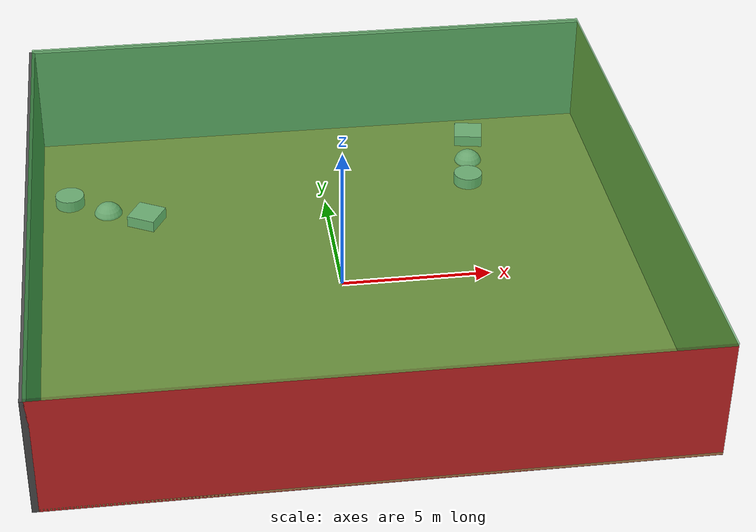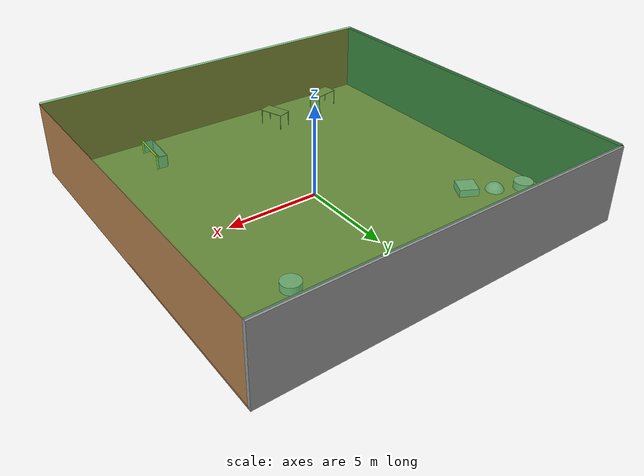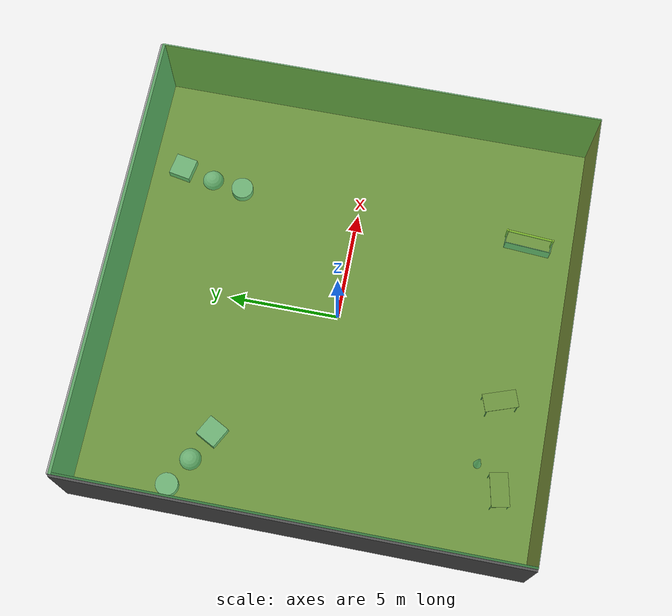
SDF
<sdf version="1.4">
 <world name="default">
  <physics type="ode">
   <max_step_size>0.001</max_step_size>
   <real_time_factor>1</real_time_factor>
   <real_time_update_rate>1000</real_time_update_rate>
   <gravity>0 0 -9.8</gravity>
  </physics>
  <scene><ambient>0.4 0.4 0.4 1</ambient><background>0.7 0.7 0.7 1</background><shadows>1</shadows></scene>
  <model name="Surrounding">
   <static>1</static>
   <link name="Ceiling">
    <collision name="Ceiling_Collision"><geometry><box><size>20 20 0.1</size></box></geometry></collision>
    <visual name="Ceiling_Visual">
     <geometry><box><size>20 20 0.1</size></box></geometry>
     <material>
      <script><uri>file://media/materials/scripts/gazebo.material</uri><name>Gazebo/GreenTransparent</name></script>
     </material>
    </visual>
    <pose>0 0 4.05 0 0 0</pose>
   </link>
   <link name="Wall_South">
    <collision name="Wall_South_Collision">
     <geometry><box><size>20 0 4</size></box></geometry>
     <pose>0 0 2 0 -0 0</pose>
    </collision>
    <visual name="Wall_South_Visual">
     <pose>0 0 2 0 -0 0</pose>
     <geometry><box><size>20 0 4</size></box></geometry>
     <material>
      <script><uri>file://media/materials/scripts/gazebo.material</uri><name>Gazebo/Red</name></script>
     </material>
    </visual>
    <velocity_decay><linear>0</linear><angular>0</angular></velocity_decay>
    <pose>0 -10 0 0 -0 0</pose>
   </link>
   <link name="Wall_East">
    <collision name="Wall_21_Collision">
     <geometry><box><size>20 0 4</size></box></geometry>
     <pose>0 0 2 0 -0 0</pose>
    </collision>
    <visual name="Wall_21_Visual">
     <pose>0 0 2 0 -0 0</pose>
     <geometry><box><size>20 0 4</size></box></geometry>
     <material>
      <script><uri>file://media/materials/scripts/gazebo.material</uri><name>Gazebo/WoodFloor</name></script>
     </material>
    </visual>
    <velocity_decay><linear>0</linear><angular>0</angular></velocity_decay>
    <pose>10 0 0 0 -0 1.5708</pose>
   </link>
   <link name="Wall_North">
    <collision name="Wall_22_Collision">
     <geometry><box><size>20 0.2 4</size></box></geometry>
     <pose>0 0 2 0 -0 0</pose>
    </collision>
    <visual name="Wall_22_Visual">
     <pose>0 0 2 0 -0 0</pose>
     <geometry><box><size>20 0.2 4</size></box></geometry>
     <material>
      <script><uri>file://media/materials/scripts/gazebo.material</uri><name>Gazebo/GreyGradientSky</name></script>
     </material>
    </visual>
    <velocity_decay><linear>0</linear><angular>0</angular></velocity_decay>
    <pose>0 10 0 0 -0 0</pose>
   </link>
   <link name="Wall_West">
    <collision name="Wall_23_Collision">
     <geometry><box><size>20 0.2 4</size></box></geometry>
     <pose>0 0 2 0 -0 0</pose>
    </collision>
    <visual name="Wall_23_Visual">
     <pose>0 0 2 0 -0 0</pose>
     <geometry><box><size>20 0.2 4</size></box></geometry>
     <material>
      <script><uri>file://media/materials/scripts/gazebo.material</uri><name>Gazebo/DarkGrey</name></script>
     </material>
    </visual>
    <velocity_decay><linear>0</linear><angular>0</angular></velocity_decay>
    <pose>-10 0 0 0 0 -1.5708</pose>
   </link>
   <link name="Ground_link">
    <collision name="collision">
     <pose>0 0 .05 0 -0 0</pose>
     <geometry><box><size>20 20 0.1</size></box></geometry>
    </collision>
    <visual name="visual">
     <pose>0 0 .05 0 -0 0</pose>
     <geometry><box><size>20 20 0.1</size></box></geometry>
     <material>
      <script><uri>file://media/materials/scripts/gazebo.material</uri><name>Gazebo/WoodPallet</name></script>
     </material>
    </visual>
   </link>
   <static>1</static>
  </model>
  <spherical_coordinates>
   <surface_model>EARTH_WGS84</surface_model>
   <latitude_deg>0</latitude_deg>
   <longitude_deg>0</longitude_deg>
   <elevation>0</elevation>
   <heading_deg>0</heading_deg>
  </spherical_coordinates>
  <light name="lightball_0" type="diffuse">
   <diffuse>0.8 0.8 0.8 1</diffuse>
   <specular>0.2 0.2 0.2 1</specular>
   <attenuation>
    <range>100</range>
    <constant>0.7</constant>
    <linear>0.01</linear>
    <quadratic>0.001</quadratic>
   </attenuation>
   <direction>-0.5 0.1 -0.9</direction>
   <pose>-0.602299098177 -5.03157525721 3.7909501908 0 0 0</pose>
  </light>
  <light name="lightball_1" type="diffuse">
   <diffuse>0.8 0.8 0.8 1</diffuse>
   <specular>0.2 0.2 0.2 1</specular>
   <attenuation>
    <range>100</range>
    <constant>0.7</constant>
    <linear>0.01</linear>
    <quadratic>0.001</quadratic>
   </attenuation>
   <direction>-0.5 0.1 -0.9</direction>
   <pose>8.1970063411 4.37877296668 3.8220330077 0 0 0</pose>
  </light>
  <light name="lightball_2" type="diffuse">
   <diffuse>0.8 0.8 0.8 1</diffuse>
   <specular>0.2 0.2 0.2 1</specular>
   <attenuation>
    <range>100</range>
    <constant>0.7</constant>
    <linear>0.01</linear>
    <quadratic>0.001</quadratic>
   </attenuation>
   <direction>-0.5 0.1 -0.9</direction>
   <pose>-2.72415965016 7.24258903674 1.10066443029 0 0 0</pose>
  </light>
  <light name="lightball_3" type="diffuse">
   <diffuse>0.8 0.8 0.8 1</diffuse>
   <specular>0.2 0.2 0.2 1</specular>
   <attenuation>
    <range>100</range>
    <constant>0.7</constant>
    <linear>0.01</linear>
    <quadratic>0.001</quadratic>
   </attenuation>
   <direction>-0.5 0.1 -0.9</direction>
   <pose>-4.29000400105 -7.00591398772 1.64048272442 0 0 0</pose>
  </light>
  <light name="lightball_4" type="diffuse">
   <diffuse>0.8 0.8 0.8 1</diffuse>
   <specular>0.2 0.2 0.2 1</specular>
   <attenuation>
    <range>100</range>
    <constant>0.7</constant>
    <linear>0.01</linear>
    <quadratic>0.001</quadratic>
   </attenuation>
   <direction>-0.5 0.1 -0.9</direction>
   <pose>3.29917196102 7.47049530819 1.5862786605 0 0 0</pose>
  </light>
  <light name="lightball_5" type="diffuse">
   <diffuse>0.8 0.8 0.8 1</diffuse>
   <specular>0.2 0.2 0.2 1</specular>
   <attenuation>
    <range>100</range>
    <constant>0.7</constant>
    <linear>0.01</linear>
    <quadratic>0.001</quadratic>
   </attenuation>
   <direction>-0.5 0.1 -0.9</direction>
   <pose>-1.93141257495 -0.484355175844 1.34747415945 0 0 0</pose>
  </light>
  <light name="lightball_6" type="diffuse">
   <diffuse>0.8 0.8 0.8 1</diffuse>
   <specular>0.2 0.2 0.2 1</specular>
   <attenuation>
    <range>100</range>
    <constant>0.7</constant>
    <linear>0.01</linear>
    <quadratic>0.001</quadratic>
   </attenuation>
   <direction>-0.5 0.1 -0.9</direction>
   <pose>-1.43752490825 8.57086714166 2.03038895578 0 0 0</pose>
  </light>
  <include><uri>model://table</uri><pose>-6.56890945533 -8.30743048189 0 0 0 0.209456589622</pose></include>
  <include>
   <uri>model://textured_shapes</uri>
   <pose>-7.63461144372 5.08262232546 0 0 0 1.07772618806</pose>
  </include>
  <include>
   <uri>model://construction_cone</uri>
   <pose>-5.48562842415 -7.2622877054 0 0 0 2.1271068437</pose>
  </include>
  <include><uri>model://table</uri><pose>-2.69812071656 -7.75901733357 0 0 0 1.90838299229</pose></include>
  <include>
   <uri>model://robocup_3Dsim_goal</uri>
   <pose>5.26187344382 -7.96341033689 0 0 0 3.07474559108</pose>
  </include>
  <include>
   <uri>model://textured_shapes</uri>
   <pose>5.50047529868 7.01471385041 0 0 0 2.96032775609</pose>
  </include>
 </world>
</sdf>

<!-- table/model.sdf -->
<sdf version="1.5">
  <model name="table">
    <static>true</static>
    <link name="link">
      <collision name="surface">
        <pose>0 0 1.0 0 0 0</pose>
        <geometry>
          <box>
            <size>1.5 0.8 0.03</size>
          </box>
        </geometry>
        <surface>
          <friction>
            <ode>
              <mu>0.6</mu>
              <mu2>0.6</mu2>
            </ode>
          </friction>
        </surface>
      </collision>
      <visual name="visual1">
        <pose>0 0 1.0 0 0 0</pose>
        <geometry>
          <box>
            <size>1.5 0.8 0.03</size>
          </box>
        </geometry>
        <material>
          <script>
            <uri>model://media/materials/scripts/gazebo.material</uri>
            <name>Gazebo/Wood</name>
          </script>
        </material>
      </visual>
      <collision name="front_left_leg">
        <pose>0.68 0.38 0.5 0 0 0</pose>
        <geometry>
          <cylinder>
            <radius>0.02</radius>
            <length>1.0</length>
          </cylinder>
        </geometry>
      </collision>
      <visual name="front_left_leg">
        <pose>0.68 0.38 0.5 0 0 0</pose>
        <geometry>
          <cylinder>
            <radius>0.02</radius>
            <length>1.0</length>
          </cylinder>
        </geometry>
        <material>
          <script>
            <uri>model://media/materials/scripts/gazebo.material</uri>
            <name>Gazebo/Grey</name>
          </script>
        </material>
      </visual>
      <collision name="front_right_leg">
        <pose>0.68 -0.38 0.5 0 0 0</pose>
        <geometry>
          <cylinder>
            <radius>0.02</radius>
            <length>1.0</length>
          </cylinder>
        </geometry>
      </collision>
      <visual name="front_right_leg">
        <pose>0.68 -0.38 0.5 0 0 0</pose>
        <geometry>
          <cylinder>
            <radius>0.02</radius>
            <length>1.0</length>
          </cylinder>
        </geometry>
        <material>
          <script>
            <uri>model://media/materials/scripts/gazebo.material</uri>
            <name>Gazebo/Grey</name>
          </script>
        </material>
      </visual>
      <collision name="back_right_leg">
        <pose>-0.68 -0.38 0.5 0 0 0</pose>
        <geometry>
          <cylinder>
            <radius>0.02</radius>
            <length>1.0</length>
          </cylinder>
        </geometry>
      </collision>
      <visual name="back_right_leg">
        <pose>-0.68 -0.38 0.5 0 0 0</pose>
        <geometry>
          <cylinder>
            <radius>0.02</radius>
            <length>1.0</length>
          </cylinder>
        </geometry>
        <material>
          <script>
            <uri>model://media/materials/scripts/gazebo.material</uri>
            <name>Gazebo/Grey</name>
          </script>
        </material>
      </visual>
      <collision name="back_left_leg">
        <pose>-0.68 0.38 0.5 0 0 0</pose>
        <geometry>
          <cylinder>
            <radius>0.02</radius>
            <length>1.0</length>
          </cylinder>
        </geometry>
      </collision>
      <visual name="back_left_leg">
        <pose>-0.68 0.38 0.5 0 0 0</pose>
        <geometry>
          <cylinder>
            <radius>0.02</radius>
            <length>1.0</length>
          </cylinder>
        </geometry>
        <material>
          <script>
            <uri>model://media/materials/scripts/gazebo.material</uri>
            <name>Gazebo/Grey</name>
          </script>
        </material>
      </visual>
    </link>
  </model>
</sdf>

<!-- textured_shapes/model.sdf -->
<sdf version="1.6">
  <model name="textured_shapes">
    <pose>0 0 0.5 0 0 0</pose>
    <link name="box">
      <pose>0 -1.5 0 0 0 0</pose>
      <collision name="collision">
        <geometry>
          <box>
            <size>1 1 1</size>
          </box>
        </geometry>
      </collision>
      <visual name="visual">
        <geometry>
          <box>
            <size>1 1 1</size>
          </box>
        </geometry>
        <material>
          <script>
            <uri>model://../model_source/models/textured_shapes/materials/scripts</uri>
            <uri>model://../model_source/models/textured_shapes/materials/textures</uri>
            <name>TexturedShape/Squares</name>
          </script>
        </material>
      </visual>
    </link>
    <link name="sphere">
      <collision name="collision">
        <geometry>
          <sphere>
            <radius>0.5</radius>
          </sphere>
        </geometry>
      </collision>
      <visual name="visual">
        <geometry>
          <sphere>
            <radius>0.5</radius>
          </sphere>
        </geometry>
        <material>
          <script>
            <uri>model://../model_source/models/textured_shapes/materials/scripts</uri>
            <uri>model://../model_source/models/textured_shapes/materials/textures</uri>
            <name>TexturedShape/Squares</name>
          </script>
        </material>
      </visual>
    </link>
    <link name="cylinder">
      <pose>0 1.5 0 0 0 0</pose>
      <collision name="collision">
        <geometry>
          <cylinder>
            <radius>0.5</radius>
            <length>1</length>
          </cylinder>
        </geometry>
      </collision>
      <visual name="visual">
        <geometry>
          <cylinder>
            <radius>0.5</radius>
            <length>1</length>
          </cylinder>
        </geometry>
        <material>
          <script>
            <uri>model://../model_source/models/textured_shapes/materials/scripts</uri>
            <uri>model://../model_source/models/textured_shapes/materials/textures</uri>
            <name>TexturedShape/Squares</name>
          </script>
        </material>
      </visual>
    </link>
  </model>
</sdf>

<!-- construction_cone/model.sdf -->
<sdf version="1.5">
  <model name="Construction Cone">
    <link name="link">
      <collision name="collision">
        <geometry>
          <mesh>
            <scale>10 10 10</scale>
            <uri>file://isr-testbed/construction_cone/meshes/construction_cone.dae</uri>
          </mesh>
        </geometry>
      </collision>
      <visual name="visual">
        <geometry>
          <mesh>
            <scale>10 10 10</scale>
            <uri>file://isr-testbed/construction_cone/meshes/construction_cone.dae</uri>
          </mesh>
        </geometry>
      </visual>
    </link>
  </model>
</sdf>

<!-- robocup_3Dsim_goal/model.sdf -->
<sdf version="1.5">
  <model name="robocup_3d_goal">
    <static>true</static>
    <link name="left_post">
      <pose>0 1.05 0.45 0 0 0</pose>
      <collision name="collision">
        <geometry>
          <cylinder>
            <radius>0.05</radius>
            <length>0.9</length>
          </cylinder>
        </geometry>
      </collision>
      <visual name="visual">
        <geometry>
          <cylinder>
            <radius>0.05</radius>
            <length>0.9</length>
          </cylinder>
        </geometry>
        <material>
          <script>
            <uri>file://media/materials/scripts/gazebo.material</uri>
            <name>Gazebo/ZincYellow</name>
          </script>
        </material>
      </visual>
    </link>
    <link name="left_support_horiz_lower">
      <pose>0.30 1.05 0.01 0 0 0</pose>
      <collision name="collision">
        <geometry>
          <box>
            <size>0.50 0.02 0.02</size>
          </box>
        </geometry>
      </collision>
      <visual name="visual">
        <geometry>
          <box>
            <size>0.50 0.02 0.02</size>
          </box>
        </geometry>
        <material>
          <script>
            <uri>file://media/materials/scripts/gazebo.material</uri>
            <name>Gazebo/White</name>
          </script>
        </material>
      </visual>
    </link>
    <link name="left_support_horiz_upper">
      <pose>0.30 1.05 0.79 0 0 0</pose>
      <collision name="collision">
        <geometry>
          <box>
            <size>0.50 0.02 0.02</size>
          </box>
        </geometry>
      </collision>
      <visual name="visual">
        <geometry>
          <box>
            <size>0.50 0.02 0.02</size>
          </box>
        </geometry>
        <material>
          <script>
            <uri>file://media/materials/scripts/gazebo.material</uri>
            <name>Gazebo/White</name>
          </script>
        </material>
      </visual>
    </link>
    <link name="left_support_vertical">
      <pose>0.56 1.05 0.4 0 1.5708 0</pose>
      <collision name="collision">
        <geometry>
          <box>
            <size>0.80 0.02 0.02</size>
          </box>
        </geometry>
      </collision>
      <visual name="visual">
        <geometry>
          <box>
            <size>0.80 0.02 0.02</size>
          </box>
        </geometry>
        <material>
          <script>
            <uri>file://media/materials/scripts/gazebo.material</uri>
            <name>Gazebo/White</name>
          </script>
        </material>
      </visual>
    </link>
    <link name="right_support_horiz_lower">
      <pose>0.30 -1.05 0.01 0 0 0</pose>
      <collision name="collision">
        <geometry>
          <box>
            <size>0.50 0.02 0.02</size>
          </box>
        </geometry>
      </collision>
      <visual name="visual">
        <geometry>
          <box>
            <size>0.50 0.02 0.02</size>
          </box>
        </geometry>
        <material>
          <script>
            <uri>file://media/materials/scripts/gazebo.material</uri>
            <name>Gazebo/White</name>
          </script>
        </material>
      </visual>
    </link>
    <link name="right_support_horiz_upper">
      <pose>0.30 -1.05 0.79 0 0 0</pose>
      <collision name="collision">
        <geometry>
          <box>
            <size>0.50 0.02 0.02</size>
          </box>
        </geometry>
      </collision>
      <visual name="visual">
        <geometry>
          <box>
            <size>0.50 0.02 0.02</size>
          </box>
        </geometry>
        <material>
          <script>
            <uri>file://media/materials/scripts/gazebo.material</uri>
            <name>Gazebo/White</name>
          </script>
        </material>
      </visual>
    </link>
    <link name="right_support_vertical">
      <pose>0.56 -1.05 0.4 0 1.5708 0</pose>
      <collision name="collision">
        <geometry>
          <box>
            <size>0.80 0.02 0.02</size>
          </box>
        </geometry>
      </collision>
      <visual name="visual">
        <geometry>
          <box>
            <size>0.80 0.02 0.02</size>
          </box>
        </geometry>
        <material>
          <script>
            <uri>file://media/materials/scripts/gazebo.material</uri>
            <name>Gazebo/White</name>
          </script>
        </material>
      </visual>
    </link>
    <link name="center_support_horiz_lower">
      <pose>0.56 0 0.01 0 1.5708 0</pose>
      <collision name="collision">
        <geometry>
          <box>
            <size>0.02 2.08 0.02</size>
          </box>
        </geometry>
      </collision>
      <visual name="visual">
        <geometry>
          <box>
            <size>0.02 2.08 0.02</size>
          </box>
        </geometry>
        <material>
          <script>
            <uri>file://media/materials/scripts/gazebo.material</uri>
            <name>Gazebo/White</name>
          </script>
        </material>
      </visual>
    </link>
    <link name="center_support_horiz_upper">
      <pose>0.56 0 0.79 0 1.5708 0</pose>
      <collision name="collision">
        <geometry>
          <box>
            <size>0.02 2.08 0.02</size>
          </box>
        </geometry>
      </collision>
      <visual name="visual">
        <geometry>
          <box>
            <size>0.02 2.08 0.02</size>
          </box>
        </geometry>
        <material>
          <script>
            <uri>file://media/materials/scripts/gazebo.material</uri>
            <name>Gazebo/White</name>
          </script>
        </material>
      </visual>
    </link>
    <link name="right_post">
      <pose>0 -1.05 0.45 0 0 0</pose>
      <collision name="collision">
        <geometry>
          <cylinder>
            <radius>0.05</radius>
            <length>0.9</length>
          </cylinder>
        </geometry>
      </collision>
      <visual name="visual">
        <geometry>
          <cylinder>
            <radius>0.05</radius>
            <length>0.9</length>
          </cylinder>
        </geometry>
        <material>
          <script>
            <uri>file://media/materials/scripts/gazebo.material</uri>
            <name>Gazebo/ZincYellow</name>
          </script>
        </material>
      </visual>
    </link>
    <link name="crossbar">
      <pose>0 0 0.85 1.57 1.57 0</pose>
      <collision name="collision">
        <geometry>
          <cylinder>
            <radius>0.05</radius>
            <length>2.0</length>
          </cylinder>
        </geometry>
      </collision>
      <visual name="visual">
        <geometry>
          <cylinder>
            <radius>0.05</radius>
            <length>2.0</length>
          </cylinder>
        </geometry>
        <material>
          <script>
            <uri>file://media/materials/scripts/gazebo.material</uri>
            <name>Gazebo/ZincYellow</name>
          </script>
        </material>
      </visual>
    </link>
    <link name="center_net">
      <pose>0.56 0 0.40 0 0 0</pose>
      <collision name="collision">
        <geometry>
          <box>
            <size>0.01 2.1 0.80</size>
          </box>
        </geometry>
      </collision>
      <visual name="visual">
        <geometry>
          <box>
            <size>0.01 2.1 0.80</size>
          </box>
        </geometry>
        <material>
          <script>
            <uri>model://../model_source/models/robocup09_spl_field/materials/scripts/</uri>
            <uri>model://../model_source/models/robocup09_spl_field/materials/textures/</uri>
            <name>RoboCup/Net</name>
          </script>
        </material>
      </visual>
    </link>
    <link name="left_net">
      <pose>0.30 1.05 0.40 0 0 0</pose>
      <collision name="collision">
        <geometry>
          <box>
            <size>0.50 0.01 0.76</size>
          </box>
        </geometry>
      </collision>
      <visual name="visual">
        <geometry>
          <box>
            <size>0.50 0.01 0.76</size>
          </box>
        </geometry>
        <material>
          <script>
            <uri>model://../model_source/models/robocup09_spl_field/materials/scripts/</uri>
            <uri>model://../model_source/models/robocup09_spl_field/materials/textures/</uri>
            <name>RoboCup/Net</name>
          </script>
        </material>
      </visual>
    </link>
    <link name="right_net">
      <pose>0.30 -1.05 0.40 0 0 0</pose>
      <collision name="collision">
        <geometry>
          <box>
            <size>0.50 0.01 0.76</size>
          </box>
        </geometry>
      </collision>
      <visual name="visual">
        <geometry>
          <box>
            <size>0.50 0.01 0.76</size>
          </box>
        </geometry>
        <material>
          <script>
            <uri>model://../model_source/models/robocup09_spl_field/materials/scripts/</uri>
            <uri>model://../model_source/models/robocup09_spl_field/materials/textures/</uri>
            <name>RoboCup/Net</name>
          </script>
        </material>
      </visual>
    </link>
  </model>
</sdf>
